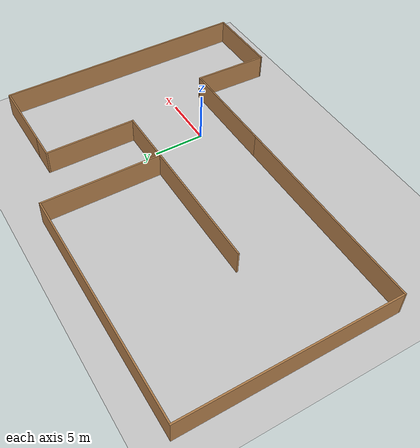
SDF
<sdf version="1.7">
 <world name="default">
  <light name="sun" type="directional">
   <pose>0 0 10 0 -0 0</pose>
   <diffuse>0.8 0.8 0.8 1</diffuse>
   <specular>0.2 0.2 0.2 1</specular>
   <attenuation>
    <range>1000</range>
    <constant>0.9</constant>
    <linear>0.01</linear>
    <quadratic>0.001</quadratic>
   </attenuation>
   <direction>-0.5 0.1 -0.9</direction>
   <spot><inner_angle>0</inner_angle><outer_angle>0</outer_angle><falloff>0</falloff></spot>
  </light>
  <model name="ground_plane">
   <static>1</static>
   <link name="link">
    <collision name="collision">
     <geometry><plane><normal>0 0 1</normal><size>100 100</size></plane></geometry>
     <surface><friction><ode><mu>100</mu><mu2>50</mu2></ode></friction></surface>
    </collision>
    <visual name="visual">
     <cast_shadows>0</cast_shadows>
     <geometry><plane><normal>0 0 1</normal><size>100 100</size></plane></geometry>
     <material>
      <script><uri>file://media/materials/scripts/gazebo.material</uri><name>Gazebo/Grey</name></script>
     </material>
    </visual>
   </link>
  </model>
  <gravity>0 0 -9.8</gravity>
  <magnetic_field>6e-06 2.3e-05 -4.2e-05</magnetic_field>
  <atmosphere type="adiabatic"/>
  <physics type="ode">
   <max_step_size>0.001</max_step_size>
   <real_time_factor>1</real_time_factor>
   <real_time_update_rate>1000</real_time_update_rate>
  </physics>
  <scene><ambient>0.4 0.4 0.4 1</ambient><background>0.7 0.7 0.7 1</background><shadows>1</shadows></scene>
  <spherical_coordinates>
   <surface_model>EARTH_WGS84</surface_model>
   <latitude_deg>0</latitude_deg>
   <longitude_deg>0</longitude_deg>
   <elevation>0</elevation>
   <heading_deg>0</heading_deg>
  </spherical_coordinates>
  <model name="maze">
   <pose>-6.375 3.62392 0 0 -0 0</pose>
   <link name="Wall_1">
    <collision name="Wall_1_Collision">
     <geometry><box><size>7.50312 0.15 2.5</size></box></geometry>
     <pose>0 0 1.25 0 -0 0</pose>
    </collision>
    <visual name="Wall_1_Visual">
     <pose>0 0 1.25 0 -0 0</pose>
     <geometry><box><size>7.50312 0.15 2.5</size></box></geometry>
     <material>
      <script><uri>file://media/materials/scripts/gazebo.material</uri><name>Gazebo/Wood</name></script>
      <ambient>1 1 1 1</ambient>
     </material>
     <meta><layer>0</layer></meta>
    </visual>
    <pose>11.482 -10.2989 0 0 -0 -1.5999</pose>
   </link>
   <link name="Wall_10">
    <collision name="Wall_10_Collision">
     <geometry><box><size>20.75 0.15 2.5</size></box></geometry>
     <pose>0 0 1.25 0 -0 0</pose>
    </collision>
    <visual name="Wall_10_Visual">
     <pose>0 0 1.25 0 -0 0</pose>
     <geometry><box><size>20.75 0.15 2.5</size></box></geometry>
     <material>
      <script><uri>file://media/materials/scripts/gazebo.material</uri><name>Gazebo/Wood</name></script>
      <ambient>1 1 1 1</ambient>
     </material>
     <meta><layer>0</layer></meta>
    </visual>
    <pose>-18.725 3.67607 0 0 -0 1.5708</pose>
   </link>
   <link name="Wall_11">
    <collision name="Wall_11_Collision">
     <geometry><box><size>22.75 0.15 2.5</size></box></geometry>
     <pose>0 0 1.25 0 -0 0</pose>
    </collision>
    <visual name="Wall_11_Visual">
     <pose>0 0 1.25 0 -0 0</pose>
     <geometry><box><size>22.75 0.15 2.5</size></box></geometry>
     <material>
      <script><uri>file://media/materials/scripts/gazebo.material</uri><name>Gazebo/Wood</name></script>
      <ambient>1 1 1 1</ambient>
     </material>
     <meta><layer>0</layer></meta>
    </visual>
    <pose>-7.425 13.9761 0 0 -0 0</pose>
   </link>
   <link name="Wall_12">
    <collision name="Wall_12_Collision">
     <geometry><box><size>11.75 0.15 2.5</size></box></geometry>
     <pose>0 0 1.25 0 -0 0</pose>
    </collision>
    <visual name="Wall_12_Visual">
     <pose>0 0 1.25 0 -0 0</pose>
     <geometry><box><size>11.75 0.15 2.5</size></box></geometry>
     <material>
      <script><uri>file://media/materials/scripts/gazebo.material</uri><name>Gazebo/Wood</name></script>
      <ambient>1 1 1 1</ambient>
     </material>
     <meta><layer>0</layer></meta>
    </visual>
    <pose>3.875 8.17608 0 0 -0 -1.5708</pose>
   </link>
   <link name="Wall_14">
    <collision name="Wall_14_Collision">
     <geometry><box><size>10.15 0.15 2.5</size></box></geometry>
     <pose>0 0 1.25 0 -0 0</pose>
    </collision>
    <visual name="Wall_14_Visual">
     <pose>0 0 1.25 0 -0 0</pose>
     <geometry><box><size>10.15 0.15 2.5</size></box></geometry>
     <material>
      <script><uri>file://media/materials/scripts/gazebo.material</uri><name>Gazebo/Wood</name></script>
      <ambient>1 1 1 1</ambient>
     </material>
     <meta><layer>0</layer></meta>
    </visual>
    <pose>6.58901 -6.62392 0 0 -0 0</pose>
   </link>
   <link name="Wall_2">
    <collision name="Wall_2_Collision">
     <geometry><box><size>7.5 0.15 2.5</size></box></geometry>
     <pose>0 0 1.25 0 -0 0</pose>
    </collision>
    <visual name="Wall_2_Visual">
     <pose>0 0 1.25 0 -0 0</pose>
     <geometry><box><size>7.5 0.15 2.5</size></box></geometry>
     <material>
      <script><uri>file://media/materials/scripts/gazebo.material</uri><name>Gazebo/Wood</name></script>
      <ambient>1 1 1 1</ambient>
     </material>
     <meta><layer>0</layer></meta>
    </visual>
    <pose>15.05 -13.9739 0 0 -0 0</pose>
   </link>
   <link name="Wall_3">
    <collision name="Wall_3_Collision">
     <geometry><box><size>25.25 0.15 2.5</size></box></geometry>
     <pose>0 0 1.25 0 -0 0</pose>
    </collision>
    <visual name="Wall_3_Visual">
     <pose>0 0 1.25 0 -0 0</pose>
     <geometry><box><size>25.25 0.15 2.5</size></box></geometry>
     <material>
      <script><uri>file://media/materials/scripts/gazebo.material</uri><name>Gazebo/Wood</name></script>
      <ambient>1 1 1 1</ambient>
     </material>
     <meta><layer>0</layer></meta>
    </visual>
    <pose>18.725 -1.42393 0 0 -0 1.5708</pose>
   </link>
   <link name="Wall_4">
    <collision name="Wall_4_Collision">
     <geometry><box><size>7.25 0.15 2.5</size></box></geometry>
     <pose>0 0 1.25 0 -0 0</pose>
    </collision>
    <visual name="Wall_4_Visual">
     <pose>0 0 1.25 0 -0 0</pose>
     <geometry><box><size>7.25 0.15 2.5</size></box></geometry>
     <material>
      <script><uri>file://media/materials/scripts/gazebo.material</uri><name>Gazebo/Wood</name></script>
      <ambient>1 1 1 1</ambient>
     </material>
     <meta><layer>0</layer></meta>
    </visual>
    <pose>15.175 11.1261 0 0 -0 3.14159</pose>
   </link>
   <link name="Wall_5">
    <collision name="Wall_5_Collision">
     <geometry><box><size>2.5 0.15 2.5</size></box></geometry>
     <pose>0 0 1.25 0 -0 0</pose>
    </collision>
    <visual name="Wall_5_Visual">
     <pose>0 0 1.25 0 -0 0</pose>
     <geometry><box><size>2.5 0.15 2.5</size></box></geometry>
     <material>
      <script><uri>file://media/materials/scripts/gazebo.material</uri><name>Gazebo/Wood</name></script>
      <ambient>1 1 1 1</ambient>
     </material>
     <meta><layer>0</layer></meta>
    </visual>
    <pose>10.45 11.1261 0 0 -0 3.14159</pose>
   </link>
   <link name="Wall_6">
    <collision name="Wall_6_Collision">
     <geometry><box><size>9 0.15 2.5</size></box></geometry>
     <pose>0 0 1.25 0 -0 0</pose>
    </collision>
    <visual name="Wall_6_Visual">
     <pose>0 0 1.25 0 -0 0</pose>
     <geometry><box><size>9 0.15 2.5</size></box></geometry>
     <material>
      <script><uri>file://media/materials/scripts/gazebo.material</uri><name>Gazebo/Wood</name></script>
      <ambient>1 1 1 1</ambient>
     </material>
     <meta><layer>0</layer></meta>
    </visual>
    <pose>9.275 6.70108 0 0 -0 -1.5708</pose>
   </link>
   <link name="Wall_7">
    <collision name="Wall_7_Collision">
     <geometry><box><size>18.5 0.15 2.5</size></box></geometry>
     <pose>0 0 1.25 0 -0 0</pose>
    </collision>
    <visual name="Wall_7_Visual">
     <pose>0 0 1.25 0 -0 0</pose>
     <geometry><box><size>18.5 0.15 2.5</size></box></geometry>
     <material>
      <script><uri>file://media/materials/scripts/gazebo.material</uri><name>Gazebo/Wood</name></script>
      <ambient>1 1 1 1</ambient>
     </material>
     <meta><layer>0</layer></meta>
    </visual>
    <pose>0.099999 2.27608 0 0 -0 3.14159</pose>
   </link>
   <link name="Wall_9">
    <collision name="Wall_9_Collision">
     <geometry><box><size>20.464 0.15 2.5</size></box></geometry>
     <pose>0 0 1.25 0 -0 0</pose>
    </collision>
    <visual name="Wall_9_Visual">
     <pose>0 0 1.25 0 -0 0</pose>
     <geometry><box><size>20.464 0.15 2.5</size></box></geometry>
     <material>
      <script><uri>file://media/materials/scripts/gazebo.material</uri><name>Gazebo/Wood</name></script>
      <ambient>1 1 1 1</ambient>
     </material>
     <meta><layer>0</layer></meta>
    </visual>
    <pose>-8.568 -6.62392 0 0 -0 3.14159</pose>
   </link>
   <static>1</static>
  </model>
 </world>
</sdf>
